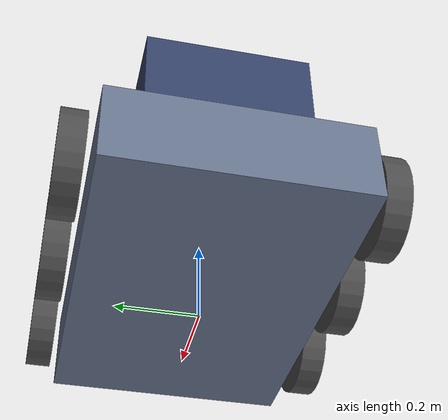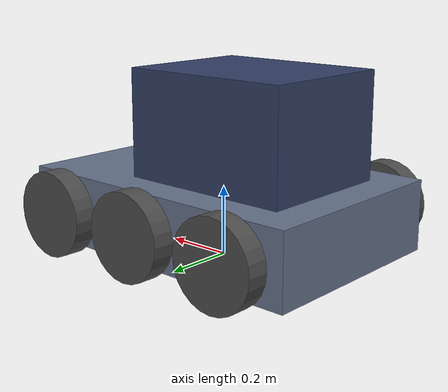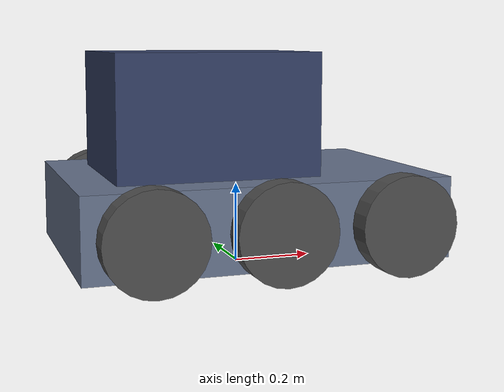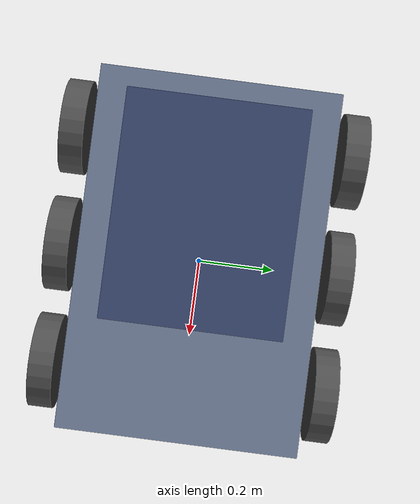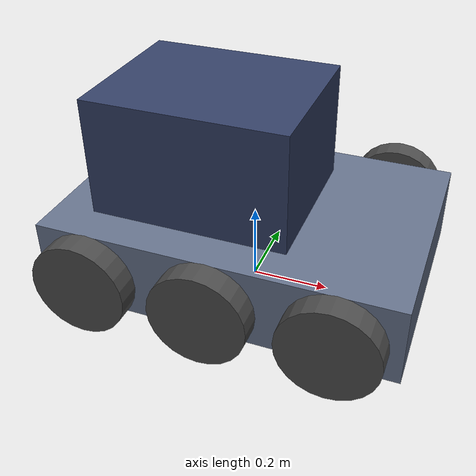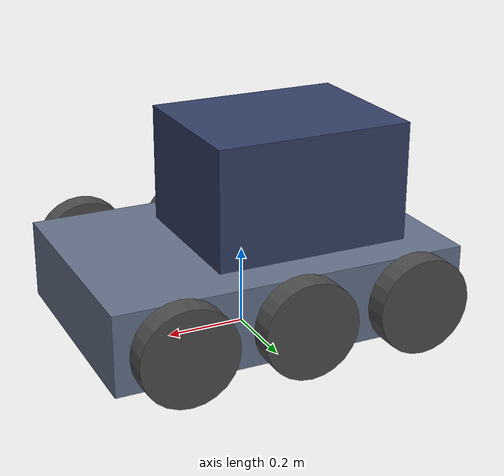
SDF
<?xml version="1.0"?>
<sdf version="1.9">
  <model name="hauler">

    <!-- Base chassis -->
    <link name="base_link">
      <pose>0 0 0.14 0 0 0</pose>
      <inertial>
        <mass>83</mass>
        <inertia>
          <ixx>2.76667</ixx>
          <ixy>0</ixy>
          <ixz>0</ixz>
          <iyy>5.87917</iyy>
          <iyz>0</iyz>
          <izz>8.09250</izz>
        </inertia>
      </inertial>
      <collision name="base_collision">
        <geometry>
          <box>
            <size>0.9 0.6 0.2</size>
          </box>
        </geometry>
      </collision>
      <visual name="base_visual">
        <geometry>
          <box>
            <size>0.9 0.6 0.2</size>
          </box>
        </geometry>
        <material>
          <ambient>0.4 0.45 0.55 1</ambient>
          <diffuse>0.4 0.45 0.55 1</diffuse>
        </material>
      </visual>

      <!-- IMU sensor -->
      <sensor name="imu_sensor" type="imu">
        <always_on>true</always_on>
        <update_rate>100</update_rate>
        <topic>imu</topic>
      </sensor>

      <!-- Depth camera -->
      <sensor name="depth_camera_sensor" type="depth_camera">
        <pose relative_to="base_link">0.45 0 0.05 0 0 0</pose>
        <update_rate>15</update_rate>
        <topic>depth_camera</topic>
        <camera>
          <horizontal_fov>1.5708</horizontal_fov>
          <image>
            <width>160</width>
            <height>120</height>
          </image>
          <clip>
            <near>0.1</near>
            <far>20.0</far>
          </clip>
        </camera>
      </sensor>
    </link>

    <!-- Front left wheel -->
    <link name="front_left_wheel">
      <pose relative_to="base_link">0.3 0.35 0 -1.5708 0 0</pose>
      <inertial>
        <mass>2.0</mass>
        <inertia>
          <ixx>0.0078</ixx>
          <ixy>0</ixy>
          <ixz>0</ixz>
          <iyy>0.0078</iyy>
          <iyz>0</iyz>
          <izz>0.0144</izz>
        </inertia>
      </inertial>
      <collision name="front_left_wheel_collision">
        <geometry>
          <cylinder>
            <radius>0.12</radius>
            <length>0.06</length>
          </cylinder>
        </geometry>
        <surface>
          <friction>
            <ode>
              <mu>0.8</mu>
              <mu2>0.6</mu2>
            </ode>
          </friction>
        </surface>
      </collision>
      <visual name="front_left_wheel_visual">
        <geometry>
          <cylinder>
            <radius>0.12</radius>
            <length>0.06</length>
          </cylinder>
        </geometry>
        <material>
          <ambient>0.3 0.3 0.3 1</ambient>
          <diffuse>0.3 0.3 0.3 1</diffuse>
        </material>
      </visual>
    </link>
    <joint name="front_left_wheel_joint" type="revolute">
      <parent>base_link</parent>
      <child>front_left_wheel</child>
      <axis>
        <xyz>0 0 1</xyz>
      </axis>
    </joint>

    <!-- Front right wheel -->
    <link name="front_right_wheel">
      <pose relative_to="base_link">0.3 -0.35 0 -1.5708 0 0</pose>
      <inertial>
        <mass>2.0</mass>
        <inertia>
          <ixx>0.0078</ixx>
          <ixy>0</ixy>
          <ixz>0</ixz>
          <iyy>0.0078</iyy>
          <iyz>0</iyz>
          <izz>0.0144</izz>
        </inertia>
      </inertial>
      <collision name="front_right_wheel_collision">
        <geometry>
          <cylinder>
            <radius>0.12</radius>
            <length>0.06</length>
          </cylinder>
        </geometry>
        <surface>
          <friction>
            <ode>
              <mu>0.8</mu>
              <mu2>0.6</mu2>
            </ode>
          </friction>
        </surface>
      </collision>
      <visual name="front_right_wheel_visual">
        <geometry>
          <cylinder>
            <radius>0.12</radius>
            <length>0.06</length>
          </cylinder>
        </geometry>
        <material>
          <ambient>0.3 0.3 0.3 1</ambient>
          <diffuse>0.3 0.3 0.3 1</diffuse>
        </material>
      </visual>
    </link>
    <joint name="front_right_wheel_joint" type="revolute">
      <parent>base_link</parent>
      <child>front_right_wheel</child>
      <axis>
        <xyz>0 0 1</xyz>
      </axis>
    </joint>

    <!-- Mid left wheel — passive roller (not driven by DiffDrive plugin).
         Low lateral friction (mu2) so the wheel can slip sideways during
         skid-steer turns instead of dragging the chassis. -->
    <link name="mid_left_wheel">
      <pose relative_to="base_link">0.0 0.35 0 -1.5708 0 0</pose>
      <inertial>
        <mass>2.0</mass>
        <inertia>
          <ixx>0.0078</ixx>
          <ixy>0</ixy>
          <ixz>0</ixz>
          <iyy>0.0078</iyy>
          <iyz>0</iyz>
          <izz>0.0144</izz>
        </inertia>
      </inertial>
      <collision name="mid_left_wheel_collision">
        <geometry>
          <cylinder>
            <radius>0.12</radius>
            <length>0.06</length>
          </cylinder>
        </geometry>
        <surface>
          <friction>
            <ode>
              <mu>0.8</mu>
              <mu2>0.05</mu2>
            </ode>
          </friction>
        </surface>
      </collision>
      <visual name="mid_left_wheel_visual">
        <geometry>
          <cylinder>
            <radius>0.12</radius>
            <length>0.06</length>
          </cylinder>
        </geometry>
        <material>
          <ambient>0.3 0.3 0.3 1</ambient>
          <diffuse>0.3 0.3 0.3 1</diffuse>
        </material>
      </visual>
    </link>
    <joint name="mid_left_wheel_joint" type="revolute">
      <parent>base_link</parent>
      <child>mid_left_wheel</child>
      <axis>
        <xyz>0 0 1</xyz>
      </axis>
    </joint>

    <!-- Mid right wheel — passive roller, see mid_left_wheel comment. -->
    <link name="mid_right_wheel">
      <pose relative_to="base_link">0.0 -0.35 0 -1.5708 0 0</pose>
      <inertial>
        <mass>2.0</mass>
        <inertia>
          <ixx>0.0078</ixx>
          <ixy>0</ixy>
          <ixz>0</ixz>
          <iyy>0.0078</iyy>
          <iyz>0</iyz>
          <izz>0.0144</izz>
        </inertia>
      </inertial>
      <collision name="mid_right_wheel_collision">
        <geometry>
          <cylinder>
            <radius>0.12</radius>
            <length>0.06</length>
          </cylinder>
        </geometry>
        <surface>
          <friction>
            <ode>
              <mu>0.8</mu>
              <mu2>0.05</mu2>
            </ode>
          </friction>
        </surface>
      </collision>
      <visual name="mid_right_wheel_visual">
        <geometry>
          <cylinder>
            <radius>0.12</radius>
            <length>0.06</length>
          </cylinder>
        </geometry>
        <material>
          <ambient>0.3 0.3 0.3 1</ambient>
          <diffuse>0.3 0.3 0.3 1</diffuse>
        </material>
      </visual>
    </link>
    <joint name="mid_right_wheel_joint" type="revolute">
      <parent>base_link</parent>
      <child>mid_right_wheel</child>
      <axis>
        <xyz>0 0 1</xyz>
      </axis>
    </joint>

    <!-- Rear left wheel -->
    <link name="rear_left_wheel">
      <pose relative_to="base_link">-0.3 0.35 0 -1.5708 0 0</pose>
      <inertial>
        <mass>2.0</mass>
        <inertia>
          <ixx>0.0078</ixx>
          <ixy>0</ixy>
          <ixz>0</ixz>
          <iyy>0.0078</iyy>
          <iyz>0</iyz>
          <izz>0.0144</izz>
        </inertia>
      </inertial>
      <collision name="rear_left_wheel_collision">
        <geometry>
          <cylinder>
            <radius>0.12</radius>
            <length>0.06</length>
          </cylinder>
        </geometry>
        <surface>
          <friction>
            <ode>
              <mu>0.8</mu>
              <mu2>0.6</mu2>
            </ode>
          </friction>
        </surface>
      </collision>
      <visual name="rear_left_wheel_visual">
        <geometry>
          <cylinder>
            <radius>0.12</radius>
            <length>0.06</length>
          </cylinder>
        </geometry>
        <material>
          <ambient>0.3 0.3 0.3 1</ambient>
          <diffuse>0.3 0.3 0.3 1</diffuse>
        </material>
      </visual>
    </link>
    <joint name="rear_left_wheel_joint" type="revolute">
      <parent>base_link</parent>
      <child>rear_left_wheel</child>
      <axis>
        <xyz>0 0 1</xyz>
      </axis>
    </joint>

    <!-- Rear right wheel -->
    <link name="rear_right_wheel">
      <pose relative_to="base_link">-0.3 -0.35 0 -1.5708 0 0</pose>
      <inertial>
        <mass>2.0</mass>
        <inertia>
          <ixx>0.0078</ixx>
          <ixy>0</ixy>
          <ixz>0</ixz>
          <iyy>0.0078</iyy>
          <iyz>0</iyz>
          <izz>0.0144</izz>
        </inertia>
      </inertial>
      <collision name="rear_right_wheel_collision">
        <geometry>
          <cylinder>
            <radius>0.12</radius>
            <length>0.06</length>
          </cylinder>
        </geometry>
        <surface>
          <friction>
            <ode>
              <mu>0.8</mu>
              <mu2>0.6</mu2>
            </ode>
          </friction>
        </surface>
      </collision>
      <visual name="rear_right_wheel_visual">
        <geometry>
          <cylinder>
            <radius>0.12</radius>
            <length>0.06</length>
          </cylinder>
        </geometry>
        <material>
          <ambient>0.3 0.3 0.3 1</ambient>
          <diffuse>0.3 0.3 0.3 1</diffuse>
        </material>
      </visual>
    </link>
    <joint name="rear_right_wheel_joint" type="revolute">
      <parent>base_link</parent>
      <child>rear_right_wheel</child>
      <axis>
        <xyz>0 0 1</xyz>
      </axis>
    </joint>

    <!-- Transport bin -->
    <link name="transport_bin">
      <pose relative_to="base_link">-0.1 0 0.25 0 0 0</pose>
      <inertial>
        <mass>5</mass>
        <inertia>
          <ixx>0.10417</ixx>
          <ixy>0</ixy>
          <ixz>0</ixz>
          <iyy>0.14167</iyy>
          <iyz>0</iyz>
          <izz>0.17083</izz>
        </inertia>
      </inertial>
      <collision name="transport_bin_collision">
        <geometry>
          <box>
            <size>0.5 0.4 0.3</size>
          </box>
        </geometry>
      </collision>
      <visual name="transport_bin_visual">
        <geometry>
          <box>
            <size>0.5 0.4 0.3</size>
          </box>
        </geometry>
        <material>
          <ambient>0.2 0.25 0.4 1</ambient>
          <diffuse>0.2 0.25 0.4 1</diffuse>
        </material>
      </visual>
    </link>
    <joint name="transport_bin_joint" type="fixed">
      <parent>base_link</parent>
      <child>transport_bin</child>
    </joint>

    <!-- DiffDrive plugin — drives only the front and rear wheels.
         Mid wheels are intentionally NOT listed so they remain passive
         rollers and avoid the 6-wheel skid-steer scrub problem. -->
    <plugin filename="gz-sim-diff-drive-system" name="gz::sim::systems::DiffDrive">
      <left_joint>front_left_wheel_joint</left_joint>
      <left_joint>rear_left_wheel_joint</left_joint>
      <right_joint>front_right_wheel_joint</right_joint>
      <right_joint>rear_right_wheel_joint</right_joint>
      <wheel_separation>0.7</wheel_separation>
      <wheel_radius>0.12</wheel_radius>
      <max_linear_acceleration>0.3</max_linear_acceleration>
      <odom_publish_frequency>20</odom_publish_frequency>
      <frame_id>odom</frame_id>
      <child_frame_id>base_link</child_frame_id>
      <cmd_timeout>0.5</cmd_timeout>
    </plugin>

    <!-- JointStatePublisher plugin -->
    <plugin filename="gz-sim-joint-state-publisher-system" name="gz::sim::systems::JointStatePublisher"/>

    <plugin filename="gz-sim-pose-publisher-system"
            name="gz::sim::systems::PosePublisher">
      <publish_model_pose>true</publish_model_pose>
      <publish_link_pose>false</publish_link_pose>
      <publish_collision_pose>false</publish_collision_pose>
      <publish_visual_pose>false</publish_visual_pose>
      <publish_sensor_pose>false</publish_sensor_pose>
      <use_pose_vector_msg>true</use_pose_vector_msg>
      <update_frequency>20</update_frequency>
    </plugin>

  </model>
</sdf>
